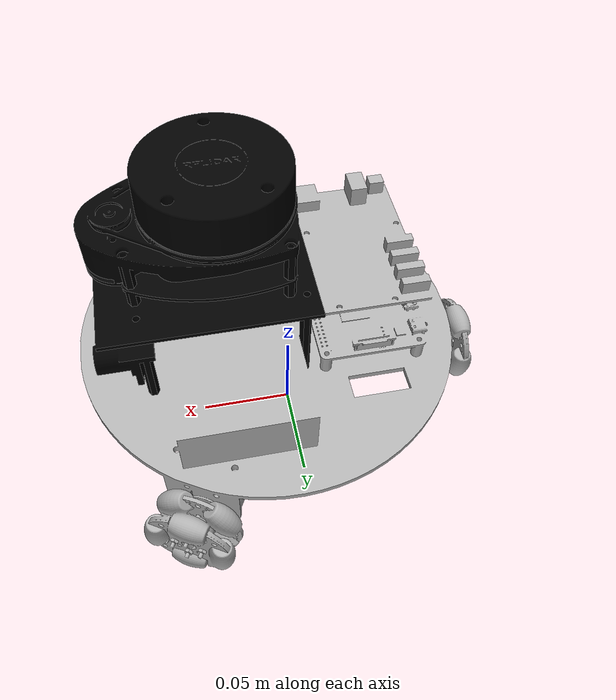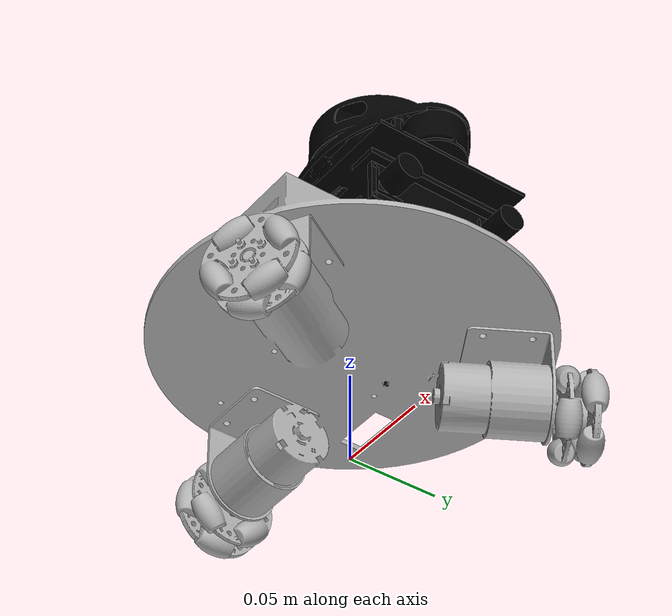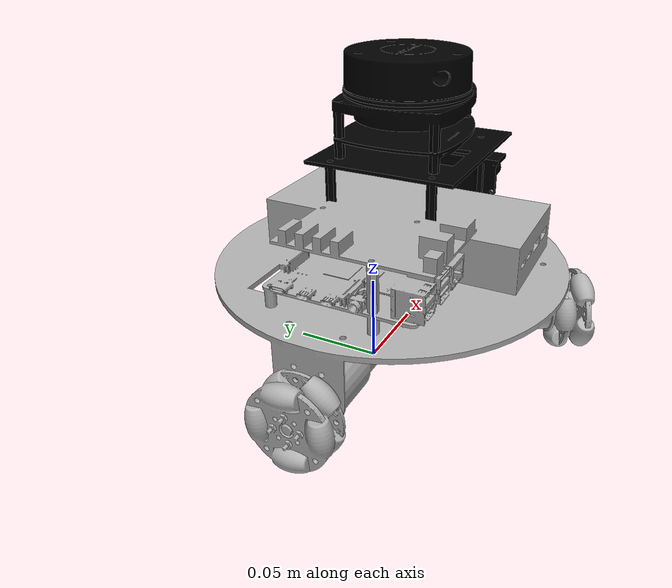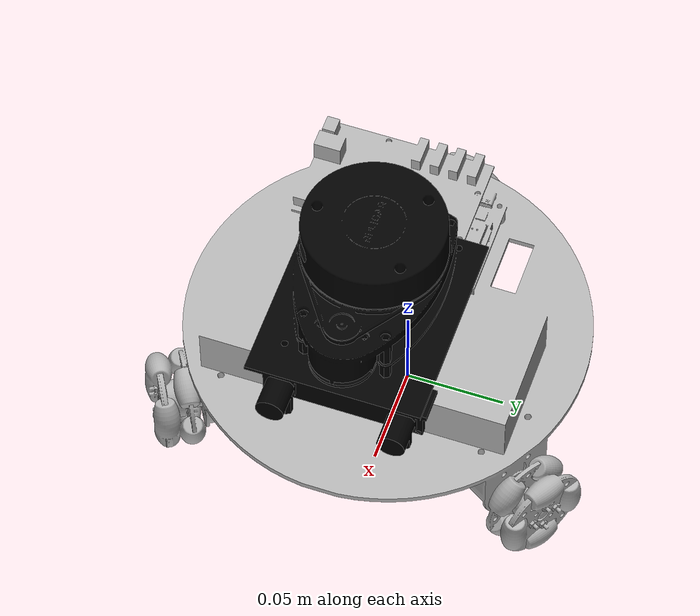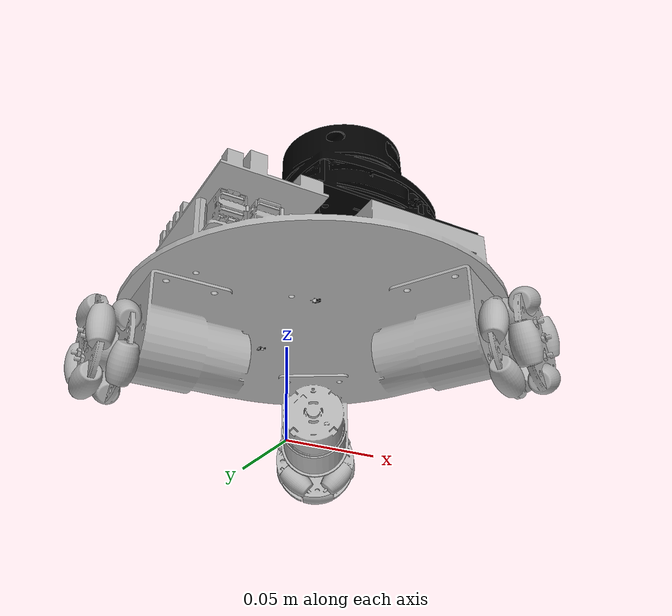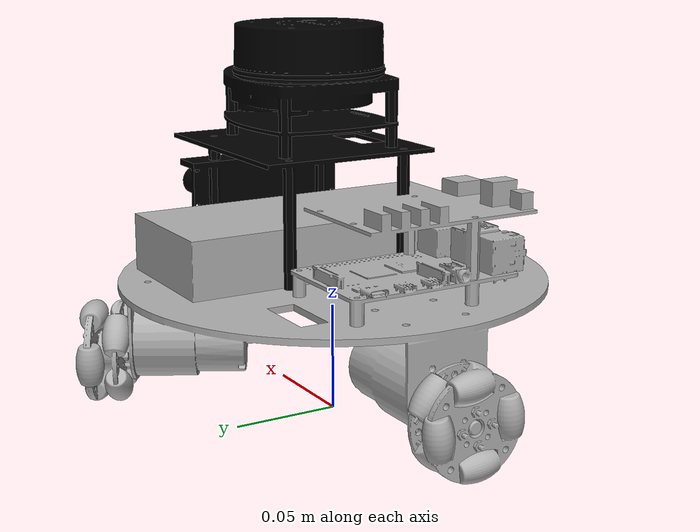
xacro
<?xml version="1.0" ?>
<robot name="urdf" xmlns:xacro="http://www.ros.org/wiki/xacro">

<xacro:include filename="$(find urdf_description)/urdf/materials.xacro" />
<xacro:include filename="$(find urdf_description)/urdf/urdf.trans" />
<!--xacro:include filename="$(find urdf_description)/urdf/urdf.gazebo" /!-->

<link name="base_footprint">
  <origin xyz="0 0 0" rpy="0 0 0"/>
  </link>

<link name="base_link">
  <inertial>
    <origin xyz="0.02041066771897629 -0.007575037833829778 0.06830931514078505" rpy="0 0 0"/>
    <mass value="30.4980631377264046"/>ss
    <inertia ixx="100.008369" iyy="100.005992" izz="100.01248" ixy="-0.000384" iyz="0.000156" ixz="-4.7e-05"/>
  </inertial>
  <visual>
    <origin xyz="0 0 0" rpy="0 0 0"/>
    <geometry>
      <mesh filename="package://urdf_description/meshes/base_link.stl" scale="0.001 0.001 0.001"/>
    </geometry>
    <material name="silver"/>
  </visual>
  <collision>
    <origin xyz="0 0 0" rpy="0 0 0"/>
    <geometry>
      <mesh filename="package://urdf_description/meshes/base_link.stl" scale="0.001 0.001 0.001"/>
    </geometry>
  </collision>
</link>

<link name="wheel_link_1">
  <inertial>
    <origin xyz="0.007650926996154439 -6.583497840632717e-05 7.082305684349283e-05" rpy="0 0 0"/>
    <mass value="10.17051038938064"/>
    <inertia ixx="5e-03" iyy="3.2e-03" izz="3.2e-03" ixy="0.0" iyz="0.0" ixz="0.0"/>
  </inertial>
  <visual>
    <origin xyz="0.103583 0.006625 -0.024" rpy="0 0 0"/>
    <geometry>
      <mesh filename="package://urdf_description/meshes/wheel_link_1.stl" scale="0.001 0.001 0.001"/>
    </geometry>
    <material name="silver"/>
  </visual>
  <collision>
    <origin xyz="0.103583 0.006625 -0.024" rpy="0 0 0"/>
    <geometry>
      <mesh filename="package://urdf_description/meshes/wheel_link_1.stl" scale="0.001 0.001 0.001"/>
    </geometry>
  </collision>
</link>

<link name="wheel_link_2">
  <inertial>
    <origin xyz="-0.0039033081055799 0.006580816821685306 3.642650617940307e-05" rpy="0 0 0"/>
    <mass value="10.17051038938064"/>
    <inertia ixx="5e-03" iyy="3.2e-03" izz="3.2e-03" ixy="0.0" iyz="0.0" ixz="0.0"/>
  </inertial>
  <visual>
    <origin xyz="-0.068227 0.105819 -0.024" rpy="0 0 0"/>
    <geometry>
      <mesh filename="package://urdf_description/meshes/wheel_link_2.stl" scale="0.001 0.001 0.001"/>
    </geometry>
    <material name="silver"/>
  </visual>
  <collision>
    <origin xyz="-0.068227 0.105819 -0.024" rpy="0 0 0"/>
    <geometry>
      <mesh filename="package://urdf_description/meshes/wheel_link_2.stl" scale="0.001 0.001 0.001"/>
    </geometry>
  </collision>
</link>

<link name="wheel_link_3">
  <inertial>
    <origin xyz="-0.0037745189185399014 -0.006655427439052869 7.703379049328954e-05" rpy="0 0 0"/>
    <mass value="10.17051038938064"/>
    <inertia ixx="5e-03" iyy="3.2e-03" izz="3.2e-03" ixy="0.0" iyz="0.0" ixz="0.0"/>
  </inertial>
  <visual>
    <origin xyz="-0.068227 -0.09257 -0.024" rpy="0 0 0"/>
    <geometry>
      <mesh filename="package://urdf_description/meshes/wheel_link_3.stl" scale="0.001 0.001 0.001"/>
    </geometry>
    <material name="silver"/>
  </visual>
  <collision>
    <origin xyz="-0.068227 -0.09257 -0.024" rpy="0 0 0"/>
    <geometry>
      <mesh filename="package://urdf_description/meshes/wheel_link_3.stl" scale="0.001 0.001 0.001"/>
    </geometry>
  </collision>
</link>

<link name="lidar_link">
  <inertial>
    <origin xyz="-0.029581681955466045 0.042548549097526214 0.028542673476791153" rpy="0 0 0"/>
    <mass value="0.8868464662474358"/>
    <inertia ixx="0.001061" iyy="0.000673" izz="0.001038" ixy="4e-06" iyz="0.00019" ixz="-1.1e-05"/>
  </inertial>
  <visual>
    <origin xyz="-0.029369 0.014322 -0.048" rpy="0 0 0"/>
    <geometry>
      <mesh filename="package://urdf_description/meshes/lidar_link_1.stl" scale="0.001 0.001 0.001"/>
    </geometry>
    <material name="black"/>
  </visual>
  <collision>
    <origin xyz="-0.029369 0.014322 -0.048" rpy="0 0 0"/>
    <geometry>
      <mesh filename="package://urdf_description/meshes/lidar_link_1.stl" scale="0.001 0.001 0.001"/>
    </geometry>
  </collision>
</link>

<link name="laser">
    <inertial>
      <origin xyz="0 0 0" rpy="0 0 3.14"/>
      <mass value="0.125"/>
      <inertia ixx="0.000"  ixy="0"  ixz="0" iyy="0.000" iyz="0" izz="0.001" />
    </inertial>
</link>

<!--base-footprint joint-->

<joint name="dummy_joint" type="fixed">
  <parent link="base_footprint"/>
  <child link="base_link"/>
  <origin xyz="0 0 0" rpy="0 0 0"/>
</joint>

<!--base-lidar joint-->

<joint name="lidar_joint" type="fixed">
  <parent link="base_link"/>
  <child link="laser"/>
  <!--origin xyz="0 -0.03 0.15" rpy="0 0 1.57"/-->
  <origin xyz="0.03 0 0.156" rpy="0 0 0"/>
</joint>

<joint name="Rigid1" type="fixed">
  <origin xyz="0.029369 -0.014322 0.048" rpy="0 0 0 "/>
  <parent link="base_link"/>
  <child link="lidar_link"/>
</joint>

<!--joint name="Rev3" type="continuous"-->
<joint name="Rev3" type="fixed">
  <origin xyz="-0.103583 -0.006625 0.024" rpy="0 0 0"/>
  <parent link="base_link"/>
  <child link="wheel_link_1"/>
  <axis xyz="-1.0 -0.0 -0.0"/>
</joint>

<joint name="Rev4" type="fixed">
  <origin xyz="0.068227 -0.105819 0.024" rpy="0 0 0"/>
  <parent link="base_link"/>
  <child link="wheel_link_2"/>
  <axis xyz="0.5 -0.866025 -0.0"/>
</joint>

<joint name="Rev5" type="fixed">
  <origin xyz="0.068227 0.09257 0.024" rpy="0 0 0"/>
  <parent link="base_link"/>
  <child link="wheel_link_3"/>
  <axis xyz="0.5 0.866025 -0.0"/>
</joint>

<xacro:property name="body_color" value="Gazebo/Black" />
<xacro:property name="body_color1" value="Gazebo/Silver" />
<xacro:property name="body_color2" value="Gazebo/Yellow" />
<xacro:property name="body_color3" value="Gazebo/Gray" />
<xacro:property name="body_color4" value="Gazebo/White" />
<gazebo reference="base_link">
  <material>${body_color4}</material>
  <mu1>0.2</mu1>
  <mu2>0.2</mu2>
  <selfCollide>true</selfCollide>
  <gravity>true</gravity>
</gazebo>

 <gazebo reference="laser">
    <material>${body_color}</material>
    <sensor type="ray" name="lds_lfcd_sensor">
      <pose>0 0 0 0 0 0</pose>
      <visualize>false</visualize>
      <update_rate>30</update_rate>
      <ray>
        <scan>
          <horizontal>
            <samples>360</samples>
            <resolution>1</resolution>
              <min_angle>-3.14159</min_angle>
              <max_angle>3.14159</max_angle>
          </horizontal>
        </scan>
        <range>
          <min>0.120</min>
          <max>10</max>
          <resolution>0.01</resolution>
        </range>
        <noise>
          <type>gaussian</type>
          <mean>0.0</mean>
          <stddev>0.01</stddev>
        </noise>
      </ray>
      <plugin name="gazebo_ros_lds_lfcd_controller" filename="libgazebo_ros_laser.so">
        <topicName>scan</topicName>
        <frameName>laser</frameName>
      </plugin>
    </sensor>
 </gazebo>

<gazebo reference="lidar_link">
  <material>${body_color}</material>
  <mu1>0.2</mu1>
  <mu2>0.2</mu2>
  <selfCollide>true</selfCollide>
</gazebo>

<gazebo reference="wheel_link_1">
  <material>${body_color3}</material>
  <mu1>0.5</mu1>
  <mu2>0.5</mu2>
  <selfCollide>true</selfCollide>
</gazebo>

<gazebo reference="wheel_link_2">
  <material>${body_color3}</material>
  <mu1>0.5</mu1>
  <mu2>0.5</mu2>
  <selfCollide>true</selfCollide>
</gazebo>

<gazebo reference="wheel_link_3">
  <material>${body_color3}</material>
  <mu1>0.5</mu1>
  <mu2>0.5</mu2>
  <selfCollide>true</selfCollide>
</gazebo>

<gazebo>
    <plugin name="object_controller" filename="libgazebo_ros_planar_move.so">
      <commandTopic>cmd_vel</commandTopic>
      <odometryTopic>odom</odometryTopic>
      <odometryFrame>odom</odometryFrame>
      <odometryRate>30</odometryRate>
      <robotBaseFrame>base_footprint</robotBaseFrame>
    </plugin>
</gazebo>

</robot>

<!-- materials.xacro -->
<robot name="urdf" xmlns:xacro="http://www.ros.org/wiki/xacro" >

<material name="silver">
  <color rgba="0.700 0.700 0.700 1.000"/>
</material>
<material name="black">
  <color rgba="0 0 0 1"/>
</material>
</robot>
